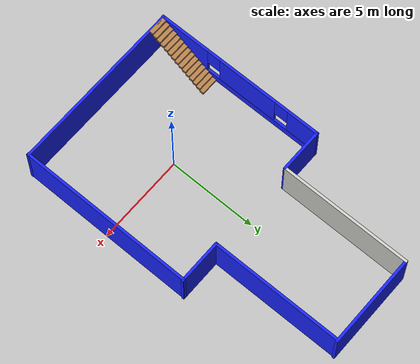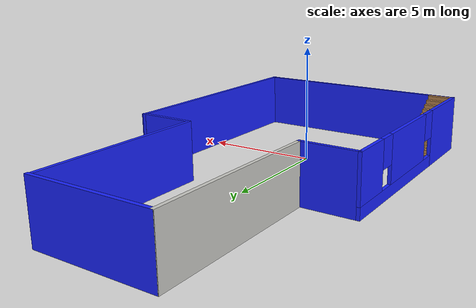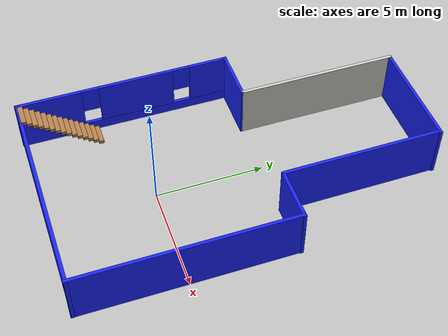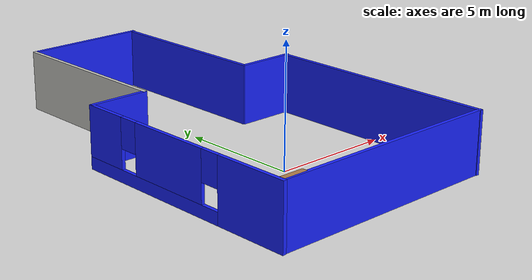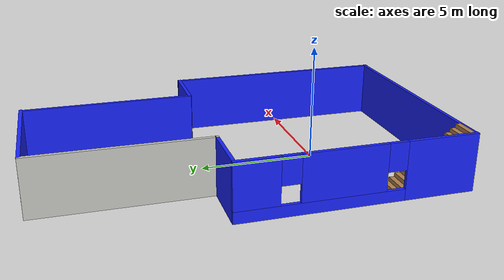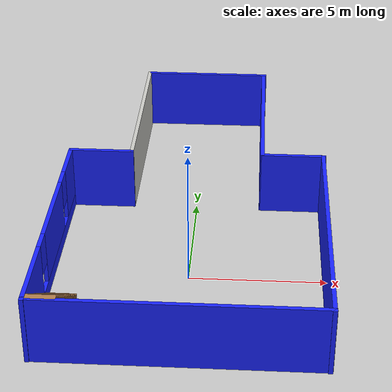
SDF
<?xml version='1.0'?>
<sdf version='1.6'>
  <model name='mySecondHouse'>
    <link name='Stairs_0'>
      <pose frame=''>-1.20208 -6.23735 0 0 -0 0</pose>
      <self_collide>0</self_collide>
      <kinematic>0</kinematic>
      <visual name='Stairs_0_Visual_0'>
        <pose frame=''>-3.16225 4.7318 0.083333 0 -0 0</pose>
        <geometry>
          <box>
            <size>1 0.233333 0.166667</size>
          </box>
        </geometry>
        <material>
          <script>
            <uri>file://media/materials/scripts/gazebo.material</uri>
            <name>Gazebo/Wood</name>
          </script>
          <ambient>1 1 1 1</ambient>
          <diffuse>1 1 1 1</diffuse>
          <specular>0.2 0.2 0.2 1</specular>
          <emissive>0 0 0 1</emissive>
        </material>
        <cast_shadows>1</cast_shadows>
        <transparency>0</transparency>
      </visual>
      <visual name='Stairs_0_Visual_1'>
        <pose frame=''>-3.16225 4.49846 0.25 0 -0 0</pose>
        <geometry>
          <box>
            <size>1 0.233333 0.166667</size>
          </box>
        </geometry>
        <material>
          <script>
            <uri>file://media/materials/scripts/gazebo.material</uri>
            <name>Gazebo/Wood</name>
          </script>
          <ambient>1 1 1 1</ambient>
          <diffuse>1 1 1 1</diffuse>
          <specular>0.2 0.2 0.2 1</specular>
          <emissive>0 0 0 1</emissive>
        </material>
        <cast_shadows>1</cast_shadows>
        <transparency>0</transparency>
      </visual>
      <visual name='Stairs_0_Visual_2'>
        <pose frame=''>-3.16225 4.26513 0.416667 0 -0 0</pose>
        <geometry>
          <box>
            <size>1 0.233333 0.166667</size>
          </box>
        </geometry>
        <material>
          <script>
            <uri>file://media/materials/scripts/gazebo.material</uri>
            <name>Gazebo/Wood</name>
          </script>
          <ambient>1 1 1 1</ambient>
          <diffuse>1 1 1 1</diffuse>
          <specular>0.2 0.2 0.2 1</specular>
          <emissive>0 0 0 1</emissive>
        </material>
        <cast_shadows>1</cast_shadows>
        <transparency>0</transparency>
      </visual>
      <visual name='Stairs_0_Visual_3'>
        <pose frame=''>-3.16225 4.0318 0.583333 0 -0 0</pose>
        <geometry>
          <box>
            <size>1 0.233333 0.166667</size>
          </box>
        </geometry>
        <material>
          <script>
            <uri>file://media/materials/scripts/gazebo.material</uri>
            <name>Gazebo/Wood</name>
          </script>
          <ambient>1 1 1 1</ambient>
          <diffuse>1 1 1 1</diffuse>
          <specular>0.2 0.2 0.2 1</specular>
          <emissive>0 0 0 1</emissive>
        </material>
        <cast_shadows>1</cast_shadows>
        <transparency>0</transparency>
      </visual>
      <visual name='Stairs_0_Visual_4'>
        <pose frame=''>-3.16225 3.79846 0.75 0 -0 0</pose>
        <geometry>
          <box>
            <size>1 0.233333 0.166667</size>
          </box>
        </geometry>
        <material>
          <script>
            <uri>file://media/materials/scripts/gazebo.material</uri>
            <name>Gazebo/Wood</name>
          </script>
          <ambient>1 1 1 1</ambient>
          <diffuse>1 1 1 1</diffuse>
          <specular>0.2 0.2 0.2 1</specular>
          <emissive>0 0 0 1</emissive>
        </material>
        <cast_shadows>1</cast_shadows>
        <transparency>0</transparency>
      </visual>
      <visual name='Stairs_0_Visual_5'>
        <pose frame=''>-3.16225 3.56513 0.916667 0 -0 0</pose>
        <geometry>
          <box>
            <size>1 0.233333 0.166667</size>
          </box>
        </geometry>
        <material>
          <script>
            <uri>file://media/materials/scripts/gazebo.material</uri>
            <name>Gazebo/Wood</name>
          </script>
          <ambient>1 1 1 1</ambient>
          <diffuse>1 1 1 1</diffuse>
          <specular>0.2 0.2 0.2 1</specular>
          <emissive>0 0 0 1</emissive>
        </material>
        <cast_shadows>1</cast_shadows>
        <transparency>0</transparency>
      </visual>
      <visual name='Stairs_0_Visual_6'>
        <pose frame=''>-3.16225 3.3318 1.08333 0 -0 0</pose>
        <geometry>
          <box>
            <size>1 0.233333 0.166667</size>
          </box>
        </geometry>
        <material>
          <script>
            <uri>file://media/materials/scripts/gazebo.material</uri>
            <name>Gazebo/Wood</name>
          </script>
          <ambient>1 1 1 1</ambient>
          <diffuse>1 1 1 1</diffuse>
          <specular>0.2 0.2 0.2 1</specular>
          <emissive>0 0 0 1</emissive>
        </material>
        <cast_shadows>1</cast_shadows>
        <transparency>0</transparency>
      </visual>
      <visual name='Stairs_0_Visual_7'>
        <pose frame=''>-3.16225 3.09846 1.25 0 -0 0</pose>
        <geometry>
          <box>
            <size>1 0.233333 0.166667</size>
          </box>
        </geometry>
        <material>
          <script>
            <uri>file://media/materials/scripts/gazebo.material</uri>
            <name>Gazebo/Wood</name>
          </script>
          <ambient>1 1 1 1</ambient>
          <diffuse>1 1 1 1</diffuse>
          <specular>0.2 0.2 0.2 1</specular>
          <emissive>0 0 0 1</emissive>
        </material>
        <cast_shadows>1</cast_shadows>
        <transparency>0</transparency>
      </visual>
      <visual name='Stairs_0_Visual_8'>
        <pose frame=''>-3.16225 2.86513 1.41667 0 -0 0</pose>
        <geometry>
          <box>
            <size>1 0.233333 0.166667</size>
          </box>
        </geometry>
        <material>
          <script>
            <uri>file://media/materials/scripts/gazebo.material</uri>
            <name>Gazebo/Wood</name>
          </script>
          <ambient>1 1 1 1</ambient>
          <diffuse>1 1 1 1</diffuse>
          <specular>0.2 0.2 0.2 1</specular>
          <emissive>0 0 0 1</emissive>
        </material>
        <cast_shadows>1</cast_shadows>
        <transparency>0</transparency>
      </visual>
      <visual name='Stairs_0_Visual_9'>
        <pose frame=''>-3.16225 2.6318 1.58333 0 -0 0</pose>
        <geometry>
          <box>
            <size>1 0.233333 0.166667</size>
          </box>
        </geometry>
        <material>
          <script>
            <uri>file://media/materials/scripts/gazebo.material</uri>
            <name>Gazebo/Wood</name>
          </script>
          <ambient>1 1 1 1</ambient>
          <diffuse>1 1 1 1</diffuse>
          <specular>0.2 0.2 0.2 1</specular>
          <emissive>0 0 0 1</emissive>
        </material>
        <cast_shadows>1</cast_shadows>
        <transparency>0</transparency>
      </visual>
      <visual name='Stairs_0_Visual_10'>
        <pose frame=''>-3.16225 2.39846 1.75 0 -0 0</pose>
        <geometry>
          <box>
            <size>1 0.233333 0.166667</size>
          </box>
        </geometry>
        <material>
          <script>
            <uri>file://media/materials/scripts/gazebo.material</uri>
            <name>Gazebo/Wood</name>
          </script>
          <ambient>1 1 1 1</ambient>
          <diffuse>1 1 1 1</diffuse>
          <specular>0.2 0.2 0.2 1</specular>
          <emissive>0 0 0 1</emissive>
        </material>
        <cast_shadows>1</cast_shadows>
        <transparency>0</transparency>
      </visual>
      <visual name='Stairs_0_Visual_11'>
        <pose frame=''>-3.16225 2.16513 1.91667 0 -0 0</pose>
        <geometry>
          <box>
            <size>1 0.233333 0.166667</size>
          </box>
        </geometry>
        <material>
          <script>
            <uri>file://media/materials/scripts/gazebo.material</uri>
            <name>Gazebo/Wood</name>
          </script>
          <ambient>1 1 1 1</ambient>
          <diffuse>1 1 1 1</diffuse>
          <specular>0.2 0.2 0.2 1</specular>
          <emissive>0 0 0 1</emissive>
        </material>
        <cast_shadows>1</cast_shadows>
        <transparency>0</transparency>
      </visual>
      <visual name='Stairs_0_Visual_12'>
        <pose frame=''>-3.16225 1.9318 2.08333 0 -0 0</pose>
        <geometry>
          <box>
            <size>1 0.233333 0.166667</size>
          </box>
        </geometry>
        <material>
          <script>
            <uri>file://media/materials/scripts/gazebo.material</uri>
            <name>Gazebo/Wood</name>
          </script>
          <ambient>1 1 1 1</ambient>
          <diffuse>1 1 1 1</diffuse>
          <specular>0.2 0.2 0.2 1</specular>
          <emissive>0 0 0 1</emissive>
        </material>
        <cast_shadows>1</cast_shadows>
        <transparency>0</transparency>
      </visual>
      <visual name='Stairs_0_Visual_13'>
        <pose frame=''>-3.16225 1.69846 2.25 0 -0 0</pose>
        <geometry>
          <box>
            <size>1 0.233333 0.166667</size>
          </box>
        </geometry>
        <material>
          <script>
            <uri>file://media/materials/scripts/gazebo.material</uri>
            <name>Gazebo/Wood</name>
          </script>
          <ambient>1 1 1 1</ambient>
          <diffuse>1 1 1 1</diffuse>
          <specular>0.2 0.2 0.2 1</specular>
          <emissive>0 0 0 1</emissive>
        </material>
        <cast_shadows>1</cast_shadows>
        <transparency>0</transparency>
      </visual>
      <visual name='Stairs_0_Visual_14'>
        <pose frame=''>-3.16225 1.46513 2.41667 0 -0 0</pose>
        <geometry>
          <box>
            <size>1 0.233333 0.166667</size>
          </box>
        </geometry>
        <material>
          <script>
            <uri>file://media/materials/scripts/gazebo.material</uri>
            <name>Gazebo/Wood</name>
          </script>
          <ambient>1 1 1 1</ambient>
          <diffuse>1 1 1 1</diffuse>
          <specular>0.2 0.2 0.2 1</specular>
          <emissive>0 0 0 1</emissive>
        </material>
        <cast_shadows>1</cast_shadows>
        <transparency>0</transparency>
      </visual>
      <collision name='Stairs_0_Collision_14'>
        <laser_retro>0</laser_retro>
        <max_contacts>10</max_contacts>
        <pose frame=''>-3.16225 1.46513 2.41667 0 -0 0</pose>
        <geometry>
          <box>
            <size>1 0.233333 0.166667</size>
          </box>
        </geometry>
        <surface>
          <friction>
            <ode>
              <mu>1</mu>
              <mu2>1</mu2>
              <fdir1>0 0 0</fdir1>
              <slip1>0</slip1>
              <slip2>0</slip2>
            </ode>
            <torsional>
              <coefficient>1</coefficient>
              <patch_radius>0</patch_radius>
              <surface_radius>0</surface_radius>
              <use_patch_radius>1</use_patch_radius>
              <ode>
                <slip>0</slip>
              </ode>
            </torsional>
          </friction>
          <bounce>
            <restitution_coefficient>0</restitution_coefficient>
            <threshold>1e+06</threshold>
          </bounce>
          <contact>
            <collide_without_contact>0</collide_without_contact>
            <collide_without_contact_bitmask>1</collide_without_contact_bitmask>
            <collide_bitmask>1</collide_bitmask>
            <ode>
              <soft_cfm>0</soft_cfm>
              <soft_erp>0.2</soft_erp>
              <kp>1e+13</kp>
              <kd>1</kd>
              <max_vel>0.01</max_vel>
              <min_depth>0</min_depth>
            </ode>
            <bullet>
              <split_impulse>1</split_impulse>
              <split_impulse_penetration_threshold>-0.01</split_impulse_penetration_threshold>
              <soft_cfm>0</soft_cfm>
              <soft_erp>0.2</soft_erp>
              <kp>1e+13</kp>
              <kd>1</kd>
            </bullet>
          </contact>
        </surface>
      </collision>
      <collision name='Stairs_0_Collision_0'>
        <laser_retro>0</laser_retro>
        <max_contacts>10</max_contacts>
        <pose frame=''>-3.16225 4.7318 0.083333 0 -0 0</pose>
        <geometry>
          <box>
            <size>1 0.233333 0.166667</size>
          </box>
        </geometry>
        <surface>
          <friction>
            <ode>
              <mu>1</mu>
              <mu2>1</mu2>
              <fdir1>0 0 0</fdir1>
              <slip1>0</slip1>
              <slip2>0</slip2>
            </ode>
            <torsional>
              <coefficient>1</coefficient>
              <patch_radius>0</patch_radius>
              <surface_radius>0</surface_radius>
              <use_patch_radius>1</use_patch_radius>
              <ode>
                <slip>0</slip>
              </ode>
            </torsional>
          </friction>
          <bounce>
            <restitution_coefficient>0</restitution_coefficient>
            <threshold>1e+06</threshold>
          </bounce>
          <contact>
            <collide_without_contact>0</collide_without_contact>
            <collide_without_contact_bitmask>1</collide_without_contact_bitmask>
            <collide_bitmask>1</collide_bitmask>
            <ode>
              <soft_cfm>0</soft_cfm>
              <soft_erp>0.2</soft_erp>
              <kp>1e+13</kp>
              <kd>1</kd>
              <max_vel>0.01</max_vel>
              <min_depth>0</min_depth>
            </ode>
            <bullet>
              <split_impulse>1</split_impulse>
              <split_impulse_penetration_threshold>-0.01</split_impulse_penetration_threshold>
              <soft_cfm>0</soft_cfm>
              <soft_erp>0.2</soft_erp>
              <kp>1e+13</kp>
              <kd>1</kd>
            </bullet>
          </contact>
        </surface>
      </collision>
      <collision name='Stairs_0_Collision_1'>
        <laser_retro>0</laser_retro>
        <max_contacts>10</max_contacts>
        <pose frame=''>-3.16225 4.49846 0.25 0 -0 0</pose>
        <geometry>
          <box>
            <size>1 0.233333 0.166667</size>
          </box>
        </geometry>
        <surface>
          <friction>
            <ode>
              <mu>1</mu>
              <mu2>1</mu2>
              <fdir1>0 0 0</fdir1>
              <slip1>0</slip1>
              <slip2>0</slip2>
            </ode>
            <torsional>
              <coefficient>1</coefficient>
              <patch_radius>0</patch_radius>
              <surface_radius>0</surface_radius>
              <use_patch_radius>1</use_patch_radius>
              <ode>
                <slip>0</slip>
              </ode>
            </torsional>
          </friction>
          <bounce>
            <restitution_coefficient>0</restitution_coefficient>
            <threshold>1e+06</threshold>
          </bounce>
          <contact>
            <collide_without_contact>0</collide_without_contact>
            <collide_without_contact_bitmask>1</collide_without_contact_bitmask>
            <collide_bitmask>1</collide_bitmask>
            <ode>
              <soft_cfm>0</soft_cfm>
              <soft_erp>0.2</soft_erp>
              <kp>1e+13</kp>
              <kd>1</kd>
              <max_vel>0.01</max_vel>
              <min_depth>0</min_depth>
            </ode>
            <bullet>
              <split_impulse>1</split_impulse>
              <split_impulse_penetration_threshold>-0.01</split_impulse_penetration_threshold>
              <soft_cfm>0</soft_cfm>
              <soft_erp>0.2</soft_erp>
              <kp>1e+13</kp>
              <kd>1</kd>
            </bullet>
          </contact>
        </surface>
      </collision>
      <collision name='Stairs_0_Collision_2'>
        <laser_retro>0</laser_retro>
        <max_contacts>10</max_contacts>
        <pose frame=''>-3.16225 4.26513 0.416667 0 -0 0</pose>
        <geometry>
          <box>
            <size>1 0.233333 0.166667</size>
          </box>
        </geometry>
        <surface>
          <friction>
            <ode>
              <mu>1</mu>
              <mu2>1</mu2>
              <fdir1>0 0 0</fdir1>
              <slip1>0</slip1>
              <slip2>0</slip2>
            </ode>
            <torsional>
              <coefficient>1</coefficient>
              <patch_radius>0</patch_radius>
              <surface_radius>0</surface_radius>
              <use_patch_radius>1</use_patch_radius>
              <ode>
                <slip>0</slip>
              </ode>
            </torsional>
          </friction>
          <bounce>
            <restitution_coefficient>0</restitution_coefficient>
            <threshold>1e+06</threshold>
          </bounce>
          <contact>
            <collide_without_contact>0</collide_without_contact>
            <collide_without_contact_bitmask>1</collide_without_contact_bitmask>
            <collide_bitmask>1</collide_bitmask>
            <ode>
              <soft_cfm>0</soft_cfm>
              <soft_erp>0.2</soft_erp>
              <kp>1e+13</kp>
              <kd>1</kd>
              <max_vel>0.01</max_vel>
              <min_depth>0</min_depth>
            </ode>
            <bullet>
              <split_impulse>1</split_impulse>
              <split_impulse_penetration_threshold>-0.01</split_impulse_penetration_threshold>
              <soft_cfm>0</soft_cfm>
              <soft_erp>0.2</soft_erp>
              <kp>1e+13</kp>
              <kd>1</kd>
            </bullet>
          </contact>
        </surface>
      </collision>
      <collision name='Stairs_0_Collision_3'>
        <laser_retro>0</laser_retro>
        <max_contacts>10</max_contacts>
        <pose frame=''>-3.16225 4.0318 0.583333 0 -0 0</pose>
        <geometry>
          <box>
            <size>1 0.233333 0.166667</size>
          </box>
        </geometry>
        <surface>
          <friction>
            <ode>
              <mu>1</mu>
              <mu2>1</mu2>
              <fdir1>0 0 0</fdir1>
              <slip1>0</slip1>
              <slip2>0</slip2>
            </ode>
            <torsional>
              <coefficient>1</coefficient>
              <patch_radius>0</patch_radius>
              <surface_radius>0</surface_radius>
              <use_patch_radius>1</use_patch_radius>
              <ode>
                <slip>0</slip>
              </ode>
            </torsional>
          </friction>
          <bounce>
            <restitution_coefficient>0</restitution_coefficient>
            <threshold>1e+06</threshold>
          </bounce>
          <contact>
            <collide_without_contact>0</collide_without_contact>
            <collide_without_contact_bitmask>1</collide_without_contact_bitmask>
            <collide_bitmask>1</collide_bitmask>
            <ode>
              <soft_cfm>0</soft_cfm>
              <soft_erp>0.2</soft_erp>
              <kp>1e+13</kp>
              <kd>1</kd>
              <max_vel>0.01</max_vel>
              <min_depth>0</min_depth>
            </ode>
            <bullet>
              <split_impulse>1</split_impulse>
              <split_impulse_penetration_threshold>-0.01</split_impulse_penetration_threshold>
              <soft_cfm>0</soft_cfm>
              <soft_erp>0.2</soft_erp>
              <kp>1e+13</kp>
              <kd>1</kd>
            </bullet>
          </contact>
        </surface>
      </collision>
      <collision name='Stairs_0_Collision_5'>
        <laser_retro>0</laser_retro>
        <max_contacts>10</max_contacts>
        <pose frame=''>-3.16225 3.56513 0.916667 0 -0 0</pose>
        <geometry>
          <box>
            <size>1 0.233333 0.166667</size>
          </box>
        </geometry>
        <surface>
          <friction>
            <ode>
              <mu>1</mu>
              <mu2>1</mu2>
              <fdir1>0 0 0</fdir1>
              <slip1>0</slip1>
              <slip2>0</slip2>
            </ode>
            <torsional>
              <coefficient>1</coefficient>
              <patch_radius>0</patch_radius>
              <surface_radius>0</surface_radius>
              <use_patch_radius>1</use_patch_radius>
              <ode>
                <slip>0</slip>
              </ode>
            </torsional>
          </friction>
          <bounce>
            <restitution_coefficient>0</restitution_coefficient>
            <threshold>1e+06</threshold>
          </bounce>
          <contact>
            <collide_without_contact>0</collide_without_contact>
            <collide_without_contact_bitmask>1</collide_without_contact_bitmask>
            <collide_bitmask>1</collide_bitmask>
            <ode>
              <soft_cfm>0</soft_cfm>
              <soft_erp>0.2</soft_erp>
              <kp>1e+13</kp>
              <kd>1</kd>
              <max_vel>0.01</max_vel>
              <min_depth>0</min_depth>
            </ode>
            <bullet>
              <split_impulse>1</split_impulse>
              <split_impulse_penetration_threshold>-0.01</split_impulse_penetration_threshold>
              <soft_cfm>0</soft_cfm>
              <soft_erp>0.2</soft_erp>
              <kp>1e+13</kp>
              <kd>1</kd>
            </bullet>
          </contact>
        </surface>
      </collision>
      <collision name='Stairs_0_Collision_6'>
        <laser_retro>0</laser_retro>
        <max_contacts>10</max_contacts>
        <pose frame=''>-3.16225 3.3318 1.08333 0 -0 0</pose>
        <geometry>
          <box>
            <size>1 0.233333 0.166667</size>
          </box>
        </geometry>
        <surface>
          <friction>
            <ode>
              <mu>1</mu>
              <mu2>1</mu2>
              <fdir1>0 0 0</fdir1>
              <slip1>0</slip1>
              <slip2>0</slip2>
            </ode>
            <torsional>
              <coefficient>1</coefficient>
              <patch_radius>0</patch_radius>
              <surface_radius>0</surface_radius>
              <use_patch_radius>1</use_patch_radius>
              <ode>
                <slip>0</slip>
              </ode>
            </torsional>
          </friction>
          <bounce>
            <restitution_coefficient>0</restitution_coefficient>
            <threshold>1e+06</threshold>
          </bounce>
          <contact>
            <collide_without_contact>0</collide_without_contact>
            <collide_without_contact_bitmask>1</collide_without_contact_bitmask>
            <collide_bitmask>1</collide_bitmask>
            <ode>
              <soft_cfm>0</soft_cfm>
              <soft_erp>0.2</soft_erp>
              <kp>1e+13</kp>
              <kd>1</kd>
              <max_vel>0.01</max_vel>
              <min_depth>0</min_depth>
            </ode>
            <bullet>
              <split_impulse>1</split_impulse>
              <split_impulse_penetration_threshold>-0.01</split_impulse_penetration_threshold>
              <soft_cfm>0</soft_cfm>
              <soft_erp>0.2</soft_erp>
              <kp>1e+13</kp>
              <kd>1</kd>
            </bullet>
          </contact>
        </surface>
      </collision>
      <collision name='Stairs_0_Collision_4'>
        <laser_retro>0</laser_retro>
        <max_contacts>10</max_contacts>
        <pose frame=''>-3.16225 3.79846 0.75 0 -0 0</pose>
        <geometry>
          <box>
            <size>1 0.233333 0.166667</size>
          </box>
        </geometry>
        <surface>
          <friction>
            <ode>
              <mu>1</mu>
              <mu2>1</mu2>
              <fdir1>0 0 0</fdir1>
              <slip1>0</slip1>
              <slip2>0</slip2>
            </ode>
            <torsional>
              <coefficient>1</coefficient>
              <patch_radius>0</patch_radius>
              <surface_radius>0</surface_radius>
              <use_patch_radius>1</use_patch_radius>
              <ode>
                <slip>0</slip>
              </ode>
            </torsional>
          </friction>
          <bounce>
            <restitution_coefficient>0</restitution_coefficient>
            <threshold>1e+06</threshold>
          </bounce>
          <contact>
            <collide_without_contact>0</collide_without_contact>
            <collide_without_contact_bitmask>1</collide_without_contact_bitmask>
            <collide_bitmask>1</collide_bitmask>
            <ode>
              <soft_cfm>0</soft_cfm>
              <soft_erp>0.2</soft_erp>
              <kp>1e+13</kp>
              <kd>1</kd>
              <max_vel>0.01</max_vel>
              <min_depth>0</min_depth>
            </ode>
            <bullet>
              <split_impulse>1</split_impulse>
              <split_impulse_penetration_threshold>-0.01</split_impulse_penetration_threshold>
              <soft_cfm>0</soft_cfm>
              <soft_erp>0.2</soft_erp>
              <kp>1e+13</kp>
              <kd>1</kd>
            </bullet>
          </contact>
        </surface>
      </collision>
      <collision name='Stairs_0_Collision_9'>
        <laser_retro>0</laser_retro>
        <max_contacts>10</max_contacts>
        <pose frame=''>-3.16225 2.6318 1.58333 0 -0 0</pose>
        <geometry>
          <box>
            <size>1 0.233333 0.166667</size>
          </box>
        </geometry>
        <surface>
          <friction>
            <ode>
              <mu>1</mu>
              <mu2>1</mu2>
              <fdir1>0 0 0</fdir1>
              <slip1>0</slip1>
              <slip2>0</slip2>
            </ode>
            <torsional>
              <coefficient>1</coefficient>
              <patch_radius>0</patch_radius>
              <surface_radius>0</surface_radius>
              <use_patch_radius>1</use_patch_radius>
              <ode>
                <slip>0</slip>
              </ode>
            </torsional>
          </friction>
          <bounce>
            <restitution_coefficient>0</restitution_coefficient>
            <threshold>1e+06</threshold>
          </bounce>
          <contact>
            <collide_without_contact>0</collide_without_contact>
            <collide_without_contact_bitmask>1</collide_without_contact_bitmask>
            <collide_bitmask>1</collide_bitmask>
            <ode>
              <soft_cfm>0</soft_cfm>
              <soft_erp>0.2</soft_erp>
              <kp>1e+13</kp>
              <kd>1</kd>
              <max_vel>0.01</max_vel>
              <min_depth>0</min_depth>
            </ode>
            <bullet>
              <split_impulse>1</split_impulse>
              <split_impulse_penetration_threshold>-0.01</split_impulse_penetration_threshold>
              <soft_cfm>0</soft_cfm>
              <soft_erp>0.2</soft_erp>
              <kp>1e+13</kp>
              <kd>1</kd>
            </bullet>
          </contact>
        </surface>
      </collision>
      <collision name='Stairs_0_Collision_7'>
        <laser_retro>0</laser_retro>
        <max_contacts>10</max_contacts>
        <pose frame=''>-3.16225 3.09846 1.25 0 -0 0</pose>
        <geometry>
          <box>
            <size>1 0.233333 0.166667</size>
          </box>
        </geometry>
        <surface>
          <friction>
            <ode>
              <mu>1</mu>
              <mu2>1</mu2>
              <fdir1>0 0 0</fdir1>
              <slip1>0</slip1>
              <slip2>0</slip2>
            </ode>
            <torsional>
              <coefficient>1</coefficient>
              <patch_radius>0</patch_radius>
              <surface_radius>0</surface_radius>
              <use_patch_radius>1</use_patch_radius>
              <ode>
                <slip>0</slip>
              </ode>
            </torsional>
          </friction>
          <bounce>
            <restitution_coefficient>0</restitution_coefficient>
            <threshold>1e+06</threshold>
          </bounce>
          <contact>
            <collide_without_contact>0</collide_without_contact>
            <collide_without_contact_bitmask>1</collide_without_contact_bitmask>
            <collide_bitmask>1</collide_bitmask>
            <ode>
              <soft_cfm>0</soft_cfm>
              <soft_erp>0.2</soft_erp>
              <kp>1e+13</kp>
              <kd>1</kd>
              <max_vel>0.01</max_vel>
              <min_depth>0</min_depth>
            </ode>
            <bullet>
              <split_impulse>1</split_impulse>
              <split_impulse_penetration_threshold>-0.01</split_impulse_penetration_threshold>
              <soft_cfm>0</soft_cfm>
              <soft_erp>0.2</soft_erp>
              <kp>1e+13</kp>
              <kd>1</kd>
            </bullet>
          </contact>
        </surface>
      </collision>
      <collision name='Stairs_0_Collision_8'>
        <laser_retro>0</laser_retro>
        <max_contacts>10</max_contacts>
        <pose frame=''>-3.16225 2.86513 1.41667 0 -0 0</pose>
        <geometry>
          <box>
            <size>1 0.233333 0.166667</size>
          </box>
        </geometry>
        <surface>
          <friction>
            <ode>
              <mu>1</mu>
              <mu2>1</mu2>
              <fdir1>0 0 0</fdir1>
              <slip1>0</slip1>
              <slip2>0</slip2>
            </ode>
            <torsional>
              <coefficient>1</coefficient>
              <patch_radius>0</patch_radius>
              <surface_radius>0</surface_radius>
              <use_patch_radius>1</use_patch_radius>
              <ode>
                <slip>0</slip>
              </ode>
            </torsional>
          </friction>
          <bounce>
            <restitution_coefficient>0</restitution_coefficient>
            <threshold>1e+06</threshold>
          </bounce>
          <contact>
            <collide_without_contact>0</collide_without_contact>
            <collide_without_contact_bitmask>1</collide_without_contact_bitmask>
            <collide_bitmask>1</collide_bitmask>
            <ode>
              <soft_cfm>0</soft_cfm>
              <soft_erp>0.2</soft_erp>
              <kp>1e+13</kp>
              <kd>1</kd>
              <max_vel>0.01</max_vel>
              <min_depth>0</min_depth>
            </ode>
            <bullet>
              <split_impulse>1</split_impulse>
              <split_impulse_penetration_threshold>-0.01</split_impulse_penetration_threshold>
              <soft_cfm>0</soft_cfm>
              <soft_erp>0.2</soft_erp>
              <kp>1e+13</kp>
              <kd>1</kd>
            </bullet>
          </contact>
        </surface>
      </collision>
      <collision name='Stairs_0_Collision_10'>
        <laser_retro>0</laser_retro>
        <max_contacts>10</max_contacts>
        <pose frame=''>-3.16225 2.39846 1.75 0 -0 0</pose>
        <geometry>
          <box>
            <size>1 0.233333 0.166667</size>
          </box>
        </geometry>
        <surface>
          <friction>
            <ode>
              <mu>1</mu>
              <mu2>1</mu2>
              <fdir1>0 0 0</fdir1>
              <slip1>0</slip1>
              <slip2>0</slip2>
            </ode>
            <torsional>
              <coefficient>1</coefficient>
              <patch_radius>0</patch_radius>
              <surface_radius>0</surface_radius>
              <use_patch_radius>1</use_patch_radius>
              <ode>
                <slip>0</slip>
              </ode>
            </torsional>
          </friction>
          <bounce>
            <restitution_coefficient>0</restitution_coefficient>
            <threshold>1e+06</threshold>
          </bounce>
          <contact>
            <collide_without_contact>0</collide_without_contact>
            <collide_without_contact_bitmask>1</collide_without_contact_bitmask>
            <collide_bitmask>1</collide_bitmask>
            <ode>
              <soft_cfm>0</soft_cfm>
              <soft_erp>0.2</soft_erp>
              <kp>1e+13</kp>
              <kd>1</kd>
              <max_vel>0.01</max_vel>
              <min_depth>0</min_depth>
            </ode>
            <bullet>
              <split_impulse>1</split_impulse>
              <split_impulse_penetration_threshold>-0.01</split_impulse_penetration_threshold>
              <soft_cfm>0</soft_cfm>
              <soft_erp>0.2</soft_erp>
              <kp>1e+13</kp>
              <kd>1</kd>
            </bullet>
          </contact>
        </surface>
      </collision>
      <collision name='Stairs_0_Collision_11'>
        <laser_retro>0</laser_retro>
        <max_contacts>10</max_contacts>
        <pose frame=''>-3.16225 2.16513 1.91667 0 -0 0</pose>
        <geometry>
          <box>
            <size>1 0.233333 0.166667</size>
          </box>
        </geometry>
        <surface>
          <friction>
            <ode>
              <mu>1</mu>
              <mu2>1</mu2>
              <fdir1>0 0 0</fdir1>
              <slip1>0</slip1>
              <slip2>0</slip2>
            </ode>
            <torsional>
              <coefficient>1</coefficient>
              <patch_radius>0</patch_radius>
              <surface_radius>0</surface_radius>
              <use_patch_radius>1</use_patch_radius>
              <ode>
                <slip>0</slip>
              </ode>
            </torsional>
          </friction>
          <bounce>
            <restitution_coefficient>0</restitution_coefficient>
            <threshold>1e+06</threshold>
          </bounce>
          <contact>
            <collide_without_contact>0</collide_without_contact>
            <collide_without_contact_bitmask>1</collide_without_contact_bitmask>
            <collide_bitmask>1</collide_bitmask>
            <ode>
              <soft_cfm>0</soft_cfm>
              <soft_erp>0.2</soft_erp>
              <kp>1e+13</kp>
              <kd>1</kd>
              <max_vel>0.01</max_vel>
              <min_depth>0</min_depth>
            </ode>
            <bullet>
              <split_impulse>1</split_impulse>
              <split_impulse_penetration_threshold>-0.01</split_impulse_penetration_threshold>
              <soft_cfm>0</soft_cfm>
              <soft_erp>0.2</soft_erp>
              <kp>1e+13</kp>
              <kd>1</kd>
            </bullet>
          </contact>
        </surface>
      </collision>
      <collision name='Stairs_0_Collision_12'>
        <laser_retro>0</laser_retro>
        <max_contacts>10</max_contacts>
        <pose frame=''>-3.16225 1.9318 2.08333 0 -0 0</pose>
        <geometry>
          <box>
            <size>1 0.233333 0.166667</size>
          </box>
        </geometry>
        <surface>
          <friction>
            <ode>
              <mu>1</mu>
              <mu2>1</mu2>
              <fdir1>0 0 0</fdir1>
              <slip1>0</slip1>
              <slip2>0</slip2>
            </ode>
            <torsional>
              <coefficient>1</coefficient>
              <patch_radius>0</patch_radius>
              <surface_radius>0</surface_radius>
              <use_patch_radius>1</use_patch_radius>
              <ode>
                <slip>0</slip>
              </ode>
            </torsional>
          </friction>
          <bounce>
            <restitution_coefficient>0</restitution_coefficient>
            <threshold>1e+06</threshold>
          </bounce>
          <contact>
            <collide_without_contact>0</collide_without_contact>
            <collide_without_contact_bitmask>1</collide_without_contact_bitmask>
            <collide_bitmask>1</collide_bitmask>
            <ode>
              <soft_cfm>0</soft_cfm>
              <soft_erp>0.2</soft_erp>
              <kp>1e+13</kp>
              <kd>1</kd>
              <max_vel>0.01</max_vel>
              <min_depth>0</min_depth>
            </ode>
            <bullet>
              <split_impulse>1</split_impulse>
              <split_impulse_penetration_threshold>-0.01</split_impulse_penetration_threshold>
              <soft_cfm>0</soft_cfm>
              <soft_erp>0.2</soft_erp>
              <kp>1e+13</kp>
              <kd>1</kd>
            </bullet>
          </contact>
        </surface>
      </collision>
      <collision name='Stairs_0_Collision_13'>
        <laser_retro>0</laser_retro>
        <max_contacts>10</max_contacts>
        <pose frame=''>-3.16225 1.69846 2.25 0 -0 0</pose>
        <geometry>
          <box>
            <size>1 0.233333 0.166667</size>
          </box>
        </geometry>
        <surface>
          <friction>
            <ode>
              <mu>1</mu>
              <mu2>1</mu2>
              <fdir1>0 0 0</fdir1>
              <slip1>0</slip1>
              <slip2>0</slip2>
            </ode>
            <torsional>
              <coefficient>1</coefficient>
              <patch_radius>0</patch_radius>
              <surface_radius>0</surface_radius>
              <use_patch_radius>1</use_patch_radius>
              <ode>
                <slip>0</slip>
              </ode>
            </torsional>
          </friction>
          <bounce>
            <restitution_coefficient>0</restitution_coefficient>
            <threshold>1e+06</threshold>
          </bounce>
          <contact>
            <collide_without_contact>0</collide_without_contact>
            <collide_without_contact_bitmask>1</collide_without_contact_bitmask>
            <collide_bitmask>1</collide_bitmask>
            <ode>
              <soft_cfm>0</soft_cfm>
              <soft_erp>0.2</soft_erp>
              <kp>1e+13</kp>
              <kd>1</kd>
              <max_vel>0.01</max_vel>
              <min_depth>0</min_depth>
            </ode>
            <bullet>
              <split_impulse>1</split_impulse>
              <split_impulse_penetration_threshold>-0.01</split_impulse_penetration_threshold>
              <soft_cfm>0</soft_cfm>
              <soft_erp>0.2</soft_erp>
              <kp>1e+13</kp>
              <kd>1</kd>
            </bullet>
          </contact>
        </surface>
      </collision>
    </link>
    <link name='Wall_26'>
      <pose frame=''>-3.71974 4.925 0 0 -0 0</pose>
      <self_collide>0</self_collide>
      <kinematic>0</kinematic>
      <visual name='Wall_26_Visual'>
        <pose frame=''>0 0 1.25 0 -0 0</pose>
        <geometry>
          <box>
            <size>2.5 0.15 2.5</size>
          </box>
        </geometry>
        <material>
          <script>
            <uri>file://media/materials/scripts/gazebo.material</uri>
            <name>Gazebo/Grey</name>
          </script>
          <ambient>0.0980392 0.141176 1 1</ambient>
          <diffuse>0.7 0.7 0.7 1</diffuse>
          <specular>0.01 0.01 0.01 1</specular>
          <emissive>0 0 0 1</emissive>
        </material>
        <cast_shadows>1</cast_shadows>
        <transparency>0</transparency>
      </visual>
      <collision name='Wall_26_Collision'>
        <laser_retro>0</laser_retro>
        <max_contacts>10</max_contacts>
        <pose frame=''>0 0 1.25 0 -0 0</pose>
        <geometry>
          <box>
            <size>2.5 0.15 2.5</size>
          </box>
        </geometry>
        <surface>
          <friction>
            <ode>
              <mu>1</mu>
              <mu2>1</mu2>
              <fdir1>0 0 0</fdir1>
              <slip1>0</slip1>
              <slip2>0</slip2>
            </ode>
            <torsional>
              <coefficient>1</coefficient>
              <patch_radius>0</patch_radius>
              <surface_radius>0</surface_radius>
              <use_patch_radius>1</use_patch_radius>
              <ode>
                <slip>0</slip>
              </ode>
            </torsional>
          </friction>
          <bounce>
            <restitution_coefficient>0</restitution_coefficient>
            <threshold>1e+06</threshold>
          </bounce>
          <contact>
            <collide_without_contact>0</collide_without_contact>
            <collide_without_contact_bitmask>1</collide_without_contact_bitmask>
            <collide_bitmask>1</collide_bitmask>
            <ode>
              <soft_cfm>0</soft_cfm>
              <soft_erp>0.2</soft_erp>
              <kp>1e+13</kp>
              <kd>1</kd>
              <max_vel>0.01</max_vel>
              <min_depth>0</min_depth>
            </ode>
            <bullet>
              <split_impulse>1</split_impulse>
              <split_impulse_penetration_threshold>-0.01</split_impulse_penetration_threshold>
              <soft_cfm>0</soft_cfm>
              <soft_erp>0.2</soft_erp>
              <kp>1e+13</kp>
              <kd>1</kd>
            </bullet>
          </contact>
        </surface>
      </collision>
    </link>
    <link name='Wall_27'>
      <pose frame=''>-2.54213 8.59143 0 0 0 -1.57151</pose>
      <self_collide>0</self_collide>
      <kinematic>0</kinematic>
      <inertial>
        <inertia>
          <ixx>nan</ixx>
          <ixy>0</ixy>
          <ixz>0</ixz>
          <iyy>nan</iyy>
          <iyz>0</iyz>
          <izz>nan</izz>
        </inertia>
        <mass>0</mass>
        <pose frame=''>0 0 0 0 -0 0</pose>
      </inertial>
      <visual name='Wall_27_Visual'>
        <pose frame=''>0 0 1.25 0 -0 0</pose>
        <geometry>
          <box>
            <size>7.48003 0.15 2.5</size>
          </box>
        </geometry>
        <material>
          <script>
            <uri>file://media/materials/scripts/gazebo.material</uri>
            <name>Gazebo/CeilingTiled</name>
          </script>
          <ambient>0.0980392 0.141176 1 1</ambient>
          <diffuse>1 1 1 1</diffuse>
          <specular>0 0 0 1</specular>
          <emissive>0 0 0 1</emissive>
        </material>
        <cast_shadows>1</cast_shadows>
        <transparency>0</transparency>
      </visual>
      <collision name='Wall_27_Collision'>
        <laser_retro>0</laser_retro>
        <max_contacts>10</max_contacts>
        <pose frame=''>0 0 1.25 0 -0 0</pose>
        <geometry>
          <box>
            <size>7.48003 0.15 2.5</size>
          </box>
        </geometry>
        <surface>
          <friction>
            <ode>
              <mu>1</mu>
              <mu2>1</mu2>
              <fdir1>0 0 0</fdir1>
              <slip1>0</slip1>
              <slip2>0</slip2>
            </ode>
            <torsional>
              <coefficient>1</coefficient>
              <patch_radius>0</patch_radius>
              <surface_radius>0</surface_radius>
              <use_patch_radius>1</use_patch_radius>
              <ode>
                <slip>0</slip>
              </ode>
            </torsional>
          </friction>
          <bounce>
            <restitution_coefficient>0</restitution_coefficient>
            <threshold>1e+06</threshold>
          </bounce>
          <contact>
            <collide_without_contact>0</collide_without_contact>
            <collide_without_contact_bitmask>1</collide_without_contact_bitmask>
            <collide_bitmask>1</collide_bitmask>
            <ode>
              <soft_cfm>0</soft_cfm>
              <soft_erp>0.2</soft_erp>
              <kp>1e+13</kp>
              <kd>1</kd>
              <max_vel>0.01</max_vel>
              <min_depth>0</min_depth>
            </ode>
            <bullet>
              <split_impulse>1</split_impulse>
              <split_impulse_penetration_threshold>-0.01</split_impulse_penetration_threshold>
              <soft_cfm>0</soft_cfm>
              <soft_erp>0.2</soft_erp>
              <kp>1e+13</kp>
              <kd>1</kd>
            </bullet>
          </contact>
        </surface>
      </collision>
    </link>
    <link name='Wall_28'>
      <pose frame=''>0.035567 12.2589 0 0 -0 0</pose>
      <self_collide>0</self_collide>
      <kinematic>0</kinematic>
      <visual name='Wall_28_Visual'>
        <pose frame=''>0 0 1.25 0 -0 0</pose>
        <geometry>
          <box>
            <size>5.25 0.15 2.5</size>
          </box>
        </geometry>
        <material>
          <script>
            <uri>file://media/materials/scripts/gazebo.material</uri>
            <name>Gazebo/Grey</name>
          </script>
          <ambient>0.0980392 0.141176 1 1</ambient>
          <diffuse>0.7 0.7 0.7 1</diffuse>
          <specular>0.01 0.01 0.01 1</specular>
          <emissive>0 0 0 1</emissive>
        </material>
        <cast_shadows>1</cast_shadows>
        <transparency>0</transparency>
      </visual>
      <collision name='Wall_28_Collision'>
        <laser_retro>0</laser_retro>
        <max_contacts>10</max_contacts>
        <pose frame=''>0 0 1.25 0 -0 0</pose>
        <geometry>
          <box>
            <size>5.25 0.15 2.5</size>
          </box>
        </geometry>
        <surface>
          <friction>
            <ode>
              <mu>1</mu>
              <mu2>1</mu2>
              <fdir1>0 0 0</fdir1>
              <slip1>0</slip1>
              <slip2>0</slip2>
            </ode>
            <torsional>
              <coefficient>1</coefficient>
              <patch_radius>0</patch_radius>
              <surface_radius>0</surface_radius>
              <use_patch_radius>1</use_patch_radius>
              <ode>
                <slip>0</slip>
              </ode>
            </torsional>
          </friction>
          <bounce>
            <restitution_coefficient>0</restitution_coefficient>
            <threshold>1e+06</threshold>
          </bounce>
          <contact>
            <collide_without_contact>0</collide_without_contact>
            <collide_without_contact_bitmask>1</collide_without_contact_bitmask>
            <collide_bitmask>1</collide_bitmask>
            <ode>
              <soft_cfm>0</soft_cfm>
              <soft_erp>0.2</soft_erp>
              <kp>1e+13</kp>
              <kd>1</kd>
              <max_vel>0.01</max_vel>
              <min_depth>0</min_depth>
            </ode>
            <bullet>
              <split_impulse>1</split_impulse>
              <split_impulse_penetration_threshold>-0.01</split_impulse_penetration_threshold>
              <soft_cfm>0</soft_cfm>
              <soft_erp>0.2</soft_erp>
              <kp>1e+13</kp>
              <kd>1</kd>
            </bullet>
          </contact>
        </surface>
      </collision>
    </link>
    <link name='Wall_29'>
      <pose frame=''>2.54684 8.53962 0 0 -0 1.57417</pose>
      <self_collide>0</self_collide>
      <kinematic>0</kinematic>
      <inertial>
        <inertia>
          <ixx>nan</ixx>
          <ixy>0</ixy>
          <ixz>0</ixz>
          <iyy>nan</iyy>
          <iyz>0</iyz>
          <izz>nan</izz>
        </inertia>
        <mass>0</mass>
        <pose frame=''>0 0 0 0 -0 0</pose>
      </inertial>
      <visual name='Wall_29_Visual'>
        <pose frame=''>0 0 1.25 0 -0 0</pose>
        <geometry>
          <box>
            <size>7.33027 0.15 2.5</size>
          </box>
        </geometry>
        <material>
          <script>
            <uri>file://media/materials/scripts/gazebo.material</uri>
            <name>Gazebo/Grey</name>
          </script>
          <ambient>0.0980392 0.141176 1 1</ambient>
          <diffuse>0.7 0.7 0.7 1</diffuse>
          <specular>0.01 0.01 0.01 1</specular>
          <emissive>0 0 0 1</emissive>
        </material>
        <cast_shadows>1</cast_shadows>
        <transparency>0</transparency>
      </visual>
      <collision name='Wall_29_Collision'>
        <laser_retro>0</laser_retro>
        <max_contacts>10</max_contacts>
        <pose frame=''>0 0 1.25 0 -0 0</pose>
        <geometry>
          <box>
            <size>7.33027 0.15 2.5</size>
          </box>
        </geometry>
        <surface>
          <friction>
            <ode>
              <mu>1</mu>
              <mu2>1</mu2>
              <fdir1>0 0 0</fdir1>
              <slip1>0</slip1>
              <slip2>0</slip2>
            </ode>
            <torsional>
              <coefficient>1</coefficient>
              <patch_radius>0</patch_radius>
              <surface_radius>0</surface_radius>
              <use_patch_radius>1</use_patch_radius>
              <ode>
                <slip>0</slip>
              </ode>
            </torsional>
          </friction>
          <bounce>
            <restitution_coefficient>0</restitution_coefficient>
            <threshold>1e+06</threshold>
          </bounce>
          <contact>
            <collide_without_contact>0</collide_without_contact>
            <collide_without_contact_bitmask>1</collide_without_contact_bitmask>
            <collide_bitmask>1</collide_bitmask>
            <ode>
              <soft_cfm>0</soft_cfm>
              <soft_erp>0.2</soft_erp>
              <kp>1e+13</kp>
              <kd>1</kd>
              <max_vel>0.01</max_vel>
              <min_depth>0</min_depth>
            </ode>
            <bullet>
              <split_impulse>1</split_impulse>
              <split_impulse_penetration_threshold>-0.01</split_impulse_penetration_threshold>
              <soft_cfm>0</soft_cfm>
              <soft_erp>0.2</soft_erp>
              <kp>1e+13</kp>
              <kd>1</kd>
            </bullet>
          </contact>
        </surface>
      </collision>
    </link>
    <link name='Wall_30'>
      <pose frame=''>3.77003 4.925 0 0 -0 0</pose>
      <self_collide>0</self_collide>
      <kinematic>0</kinematic>
      <visual name='Wall_30_Visual'>
        <pose frame=''>0 0 1.25 0 -0 0</pose>
        <geometry>
          <box>
            <size>2.5 0.15 2.5</size>
          </box>
        </geometry>
        <material>
          <script>
            <uri>file://media/materials/scripts/gazebo.material</uri>
            <name>Gazebo/Grey</name>
          </script>
          <ambient>0.0980392 0.141176 1 1</ambient>
          <diffuse>0.7 0.7 0.7 1</diffuse>
          <specular>0.01 0.01 0.01 1</specular>
          <emissive>0 0 0 1</emissive>
        </material>
        <cast_shadows>1</cast_shadows>
        <transparency>0</transparency>
      </visual>
      <collision name='Wall_30_Collision'>
        <laser_retro>0</laser_retro>
        <max_contacts>10</max_contacts>
        <pose frame=''>0 0 1.25 0 -0 0</pose>
        <geometry>
          <box>
            <size>2.5 0.15 2.5</size>
          </box>
        </geometry>
        <surface>
          <friction>
            <ode>
              <mu>1</mu>
              <mu2>1</mu2>
              <fdir1>0 0 0</fdir1>
              <slip1>0</slip1>
              <slip2>0</slip2>
            </ode>
            <torsional>
              <coefficient>1</coefficient>
              <patch_radius>0</patch_radius>
              <surface_radius>0</surface_radius>
              <use_patch_radius>1</use_patch_radius>
              <ode>
                <slip>0</slip>
              </ode>
            </torsional>
          </friction>
          <bounce>
            <restitution_coefficient>0</restitution_coefficient>
            <threshold>1e+06</threshold>
          </bounce>
          <contact>
            <collide_without_contact>0</collide_without_contact>
            <collide_without_contact_bitmask>1</collide_without_contact_bitmask>
            <collide_bitmask>1</collide_bitmask>
            <ode>
              <soft_cfm>0</soft_cfm>
              <soft_erp>0.2</soft_erp>
              <kp>1e+13</kp>
              <kd>1</kd>
              <max_vel>0.01</max_vel>
              <min_depth>0</min_depth>
            </ode>
            <bullet>
              <split_impulse>1</split_impulse>
              <split_impulse_penetration_threshold>-0.01</split_impulse_penetration_threshold>
              <soft_cfm>0</soft_cfm>
              <soft_erp>0.2</soft_erp>
              <kp>1e+13</kp>
              <kd>1</kd>
            </bullet>
          </contact>
        </surface>
      </collision>
    </link>
    <link name='Wall_31'>
      <pose frame=''>4.90715 0 0 0 0 -1.57118</pose>
      <self_collide>0</self_collide>
      <kinematic>0</kinematic>
      <visual name='Wall_31_Visual'>
        <pose frame=''>0 0 1.25 0 -0 0</pose>
        <geometry>
          <box>
            <size>10.0006 0.15 2.5</size>
          </box>
        </geometry>
        <material>
          <script>
            <uri>file://media/materials/scripts/gazebo.material</uri>
            <name>Gazebo/Grey</name>
          </script>
          <ambient>0.0980392 0.141176 1 1</ambient>
          <diffuse>0.7 0.7 0.7 1</diffuse>
          <specular>0.01 0.01 0.01 1</specular>
          <emissive>0 0 0 1</emissive>
        </material>
        <cast_shadows>1</cast_shadows>
        <transparency>0</transparency>
      </visual>
      <collision name='Wall_31_Collision'>
        <laser_retro>0</laser_retro>
        <max_contacts>10</max_contacts>
        <pose frame=''>0 0 1.25 0 -0 0</pose>
        <geometry>
          <box>
            <size>10.0006 0.15 2.5</size>
          </box>
        </geometry>
        <surface>
          <friction>
            <ode>
              <mu>1</mu>
              <mu2>1</mu2>
              <fdir1>0 0 0</fdir1>
              <slip1>0</slip1>
              <slip2>0</slip2>
            </ode>
            <torsional>
              <coefficient>1</coefficient>
              <patch_radius>0</patch_radius>
              <surface_radius>0</surface_radius>
              <use_patch_radius>1</use_patch_radius>
              <ode>
                <slip>0</slip>
              </ode>
            </torsional>
          </friction>
          <bounce>
            <restitution_coefficient>0</restitution_coefficient>
            <threshold>1e+06</threshold>
          </bounce>
          <contact>
            <collide_without_contact>0</collide_without_contact>
            <collide_without_contact_bitmask>1</collide_without_contact_bitmask>
            <collide_bitmask>1</collide_bitmask>
            <ode>
              <soft_cfm>0</soft_cfm>
              <soft_erp>0.2</soft_erp>
              <kp>1e+13</kp>
              <kd>1</kd>
              <max_vel>0.01</max_vel>
              <min_depth>0</min_depth>
            </ode>
            <bullet>
              <split_impulse>1</split_impulse>
              <split_impulse_penetration_threshold>-0.01</split_impulse_penetration_threshold>
              <soft_cfm>0</soft_cfm>
              <soft_erp>0.2</soft_erp>
              <kp>1e+13</kp>
              <kd>1</kd>
            </bullet>
          </contact>
        </surface>
      </collision>
    </link>
    <link name='Wall_32'>
      <pose frame=''>-0.007443 -4.89795 0 0 -0 3.14156</pose>
      <self_collide>0</self_collide>
      <kinematic>0</kinematic>
      <visual name='Wall_32_Visual'>
        <pose frame=''>0 0 1.25 0 -0 0</pose>
        <geometry>
          <box>
            <size>10 0.15 2.5</size>
          </box>
        </geometry>
        <material>
          <script>
            <uri>file://media/materials/scripts/gazebo.material</uri>
            <name>Gazebo/Grey</name>
          </script>
          <ambient>0.0980392 0.141176 1 1</ambient>
          <diffuse>0.7 0.7 0.7 1</diffuse>
          <specular>0.01 0.01 0.01 1</specular>
          <emissive>0 0 0 1</emissive>
        </material>
        <cast_shadows>1</cast_shadows>
        <transparency>0</transparency>
      </visual>
      <collision name='Wall_32_Collision'>
        <laser_retro>0</laser_retro>
        <max_contacts>10</max_contacts>
        <pose frame=''>0 0 1.25 0 -0 0</pose>
        <geometry>
          <box>
            <size>10 0.15 2.5</size>
          </box>
        </geometry>
        <surface>
          <friction>
            <ode>
              <mu>1</mu>
              <mu2>1</mu2>
              <fdir1>0 0 0</fdir1>
              <slip1>0</slip1>
              <slip2>0</slip2>
            </ode>
            <torsional>
              <coefficient>1</coefficient>
              <patch_radius>0</patch_radius>
              <surface_radius>0</surface_radius>
              <use_patch_radius>1</use_patch_radius>
              <ode>
                <slip>0</slip>
              </ode>
            </torsional>
          </friction>
          <bounce>
            <restitution_coefficient>0</restitution_coefficient>
            <threshold>1e+06</threshold>
          </bounce>
          <contact>
            <collide_without_contact>0</collide_without_contact>
            <collide_without_contact_bitmask>1</collide_without_contact_bitmask>
            <collide_bitmask>1</collide_bitmask>
            <ode>
              <soft_cfm>0</soft_cfm>
              <soft_erp>0.2</soft_erp>
              <kp>1e+13</kp>
              <kd>1</kd>
              <max_vel>0.01</max_vel>
              <min_depth>0</min_depth>
            </ode>
            <bullet>
              <split_impulse>1</split_impulse>
              <split_impulse_penetration_threshold>-0.01</split_impulse_penetration_threshold>
              <soft_cfm>0</soft_cfm>
              <soft_erp>0.2</soft_erp>
              <kp>1e+13</kp>
              <kd>1</kd>
            </bullet>
          </contact>
        </surface>
      </collision>
    </link>
    <link name='Wall_33'>
      <pose frame=''>-4.94503 0.000313 0 0 -0 1.5708</pose>
      <self_collide>0</self_collide>
      <kinematic>0</kinematic>
      <visual name='Wall_33_Visual_0'>
        <pose frame=''>-3.48148 0 1.25 0 -0 0</pose>
        <geometry>
          <box>
            <size>3.03703 0.15 2.5</size>
          </box>
        </geometry>
        <material>
          <script>
            <uri>file://media/materials/scripts/gazebo.material</uri>
            <name>Gazebo/Grey</name>
          </script>
          <ambient>0.0980392 0.141176 1 1</ambient>
          <diffuse>0.7 0.7 0.7 1</diffuse>
          <specular>0.01 0.01 0.01 1</specular>
          <emissive>0 0 0 1</emissive>
        </material>
        <cast_shadows>1</cast_shadows>
        <transparency>0</transparency>
      </visual>
      <visual name='Wall_33_Visual_1'>
        <pose frame=''>1.51852 0 0.25 0 -0 0</pose>
        <geometry>
          <box>
            <size>6.96297 0.15 0.5</size>
          </box>
        </geometry>
        <material>
          <script>
            <uri>file://media/materials/scripts/gazebo.material</uri>
            <name>Gazebo/Grey</name>
          </script>
          <ambient>0.0980392 0.141176 1 1</ambient>
          <diffuse>0.7 0.7 0.7 1</diffuse>
          <specular>0.01 0.01 0.01 1</specular>
          <emissive>0 0 0 1</emissive>
        </material>
        <cast_shadows>1</cast_shadows>
        <transparency>0</transparency>
      </visual>
      <visual name='Wall_33_Visual_2'>
        <pose frame=''>0.590138 0 1.5 0 -0 0</pose>
        <geometry>
          <box>
            <size>3.50621 0.15 2</size>
          </box>
        </geometry>
        <material>
          <script>
            <uri>file://media/materials/scripts/gazebo.material</uri>
            <name>Gazebo/Grey</name>
          </script>
          <ambient>0.0980392 0.141176 1 1</ambient>
          <diffuse>0.7 0.7 0.7 1</diffuse>
          <specular>0.01 0.01 0.01 1</specular>
          <emissive>0 0 0 1</emissive>
        </material>
        <cast_shadows>1</cast_shadows>
        <transparency>0</transparency>
      </visual>
      <visual name='Wall_33_Visual_3'>
        <pose frame=''>4.07162 0 1.5 0 -0 0</pose>
        <geometry>
          <box>
            <size>1.85676 0.15 2</size>
          </box>
        </geometry>
        <material>
          <script>
            <uri>file://media/materials/scripts/gazebo.material</uri>
            <name>Gazebo/Grey</name>
          </script>
          <ambient>0.0980392 0.141176 1 1</ambient>
          <diffuse>0.7 0.7 0.7 1</diffuse>
          <specular>0.01 0.01 0.01 1</specular>
          <emissive>0 0 0 1</emissive>
        </material>
        <cast_shadows>1</cast_shadows>
        <transparency>0</transparency>
      </visual>
      <visual name='Wall_33_Visual_4'>
        <pose frame=''>-1.56297 0 1.9 0 -0 0</pose>
        <geometry>
          <box>
            <size>0.8 0.15 1.2</size>
          </box>
        </geometry>
        <material>
          <script>
            <uri>file://media/materials/scripts/gazebo.material</uri>
            <name>Gazebo/Grey</name>
          </script>
          <ambient>0.0980392 0.141176 1 1</ambient>
          <diffuse>0.7 0.7 0.7 1</diffuse>
          <specular>0.01 0.01 0.01 1</specular>
          <emissive>0 0 0 1</emissive>
        </material>
        <cast_shadows>1</cast_shadows>
        <transparency>0</transparency>
      </visual>
      <visual name='Wall_33_Visual_5'>
        <pose frame=''>2.74324 0 1.9 0 -0 0</pose>
        <geometry>
          <box>
            <size>0.8 0.15 1.2</size>
          </box>
        </geometry>
        <material>
          <script>
            <uri>file://media/materials/scripts/gazebo.material</uri>
            <name>Gazebo/Grey</name>
          </script>
          <ambient>0.0980392 0.141176 1 1</ambient>
          <diffuse>0.7 0.7 0.7 1</diffuse>
          <specular>0.01 0.01 0.01 1</specular>
          <emissive>0 0 0 1</emissive>
        </material>
        <cast_shadows>1</cast_shadows>
        <transparency>0</transparency>
      </visual>
      <collision name='Wall_33_Collision_5'>
        <laser_retro>0</laser_retro>
        <max_contacts>10</max_contacts>
        <pose frame=''>2.74324 0 1.9 0 -0 0</pose>
        <geometry>
          <box>
            <size>0.8 0.15 1.2</size>
          </box>
        </geometry>
        <surface>
          <friction>
            <ode>
              <mu>1</mu>
              <mu2>1</mu2>
              <fdir1>0 0 0</fdir1>
              <slip1>0</slip1>
              <slip2>0</slip2>
            </ode>
            <torsional>
              <coefficient>1</coefficient>
              <patch_radius>0</patch_radius>
              <surface_radius>0</surface_radius>
              <use_patch_radius>1</use_patch_radius>
              <ode>
                <slip>0</slip>
              </ode>
            </torsional>
          </friction>
          <bounce>
            <restitution_coefficient>0</restitution_coefficient>
            <threshold>1e+06</threshold>
          </bounce>
          <contact>
            <collide_without_contact>0</collide_without_contact>
            <collide_without_contact_bitmask>1</collide_without_contact_bitmask>
            <collide_bitmask>1</collide_bitmask>
            <ode>
              <soft_cfm>0</soft_cfm>
              <soft_erp>0.2</soft_erp>
              <kp>1e+13</kp>
              <kd>1</kd>
              <max_vel>0.01</max_vel>
              <min_depth>0</min_depth>
            </ode>
            <bullet>
              <split_impulse>1</split_impulse>
              <split_impulse_penetration_threshold>-0.01</split_impulse_penetration_threshold>
              <soft_cfm>0</soft_cfm>
              <soft_erp>0.2</soft_erp>
              <kp>1e+13</kp>
              <kd>1</kd>
            </bullet>
          </contact>
        </surface>
      </collision>
      <collision name='Wall_33_Collision_0'>
        <laser_retro>0</laser_retro>
        <max_contacts>10</max_contacts>
        <pose frame=''>-3.48148 0 1.25 0 -0 0</pose>
        <geometry>
          <box>
            <size>3.03703 0.15 2.5</size>
          </box>
        </geometry>
        <surface>
          <friction>
            <ode>
              <mu>1</mu>
              <mu2>1</mu2>
              <fdir1>0 0 0</fdir1>
              <slip1>0</slip1>
              <slip2>0</slip2>
            </ode>
            <torsional>
              <coefficient>1</coefficient>
              <patch_radius>0</patch_radius>
              <surface_radius>0</surface_radius>
              <use_patch_radius>1</use_patch_radius>
              <ode>
                <slip>0</slip>
              </ode>
            </torsional>
          </friction>
          <bounce>
            <restitution_coefficient>0</restitution_coefficient>
            <threshold>1e+06</threshold>
          </bounce>
          <contact>
            <collide_without_contact>0</collide_without_contact>
            <collide_without_contact_bitmask>1</collide_without_contact_bitmask>
            <collide_bitmask>1</collide_bitmask>
            <ode>
              <soft_cfm>0</soft_cfm>
              <soft_erp>0.2</soft_erp>
              <kp>1e+13</kp>
              <kd>1</kd>
              <max_vel>0.01</max_vel>
              <min_depth>0</min_depth>
            </ode>
            <bullet>
              <split_impulse>1</split_impulse>
              <split_impulse_penetration_threshold>-0.01</split_impulse_penetration_threshold>
              <soft_cfm>0</soft_cfm>
              <soft_erp>0.2</soft_erp>
              <kp>1e+13</kp>
              <kd>1</kd>
            </bullet>
          </contact>
        </surface>
      </collision>
      <collision name='Wall_33_Collision_1'>
        <laser_retro>0</laser_retro>
        <max_contacts>10</max_contacts>
        <pose frame=''>1.51852 0 0.25 0 -0 0</pose>
        <geometry>
          <box>
            <size>6.96297 0.15 0.5</size>
          </box>
        </geometry>
        <surface>
          <friction>
            <ode>
              <mu>1</mu>
              <mu2>1</mu2>
              <fdir1>0 0 0</fdir1>
              <slip1>0</slip1>
              <slip2>0</slip2>
            </ode>
            <torsional>
              <coefficient>1</coefficient>
              <patch_radius>0</patch_radius>
              <surface_radius>0</surface_radius>
              <use_patch_radius>1</use_patch_radius>
              <ode>
                <slip>0</slip>
              </ode>
            </torsional>
          </friction>
          <bounce>
            <restitution_coefficient>0</restitution_coefficient>
            <threshold>1e+06</threshold>
          </bounce>
          <contact>
            <collide_without_contact>0</collide_without_contact>
            <collide_without_contact_bitmask>1</collide_without_contact_bitmask>
            <collide_bitmask>1</collide_bitmask>
            <ode>
              <soft_cfm>0</soft_cfm>
              <soft_erp>0.2</soft_erp>
              <kp>1e+13</kp>
              <kd>1</kd>
              <max_vel>0.01</max_vel>
              <min_depth>0</min_depth>
            </ode>
            <bullet>
              <split_impulse>1</split_impulse>
              <split_impulse_penetration_threshold>-0.01</split_impulse_penetration_threshold>
              <soft_cfm>0</soft_cfm>
              <soft_erp>0.2</soft_erp>
              <kp>1e+13</kp>
              <kd>1</kd>
            </bullet>
          </contact>
        </surface>
      </collision>
      <collision name='Wall_33_Collision_2'>
        <laser_retro>0</laser_retro>
        <max_contacts>10</max_contacts>
        <pose frame=''>0.590138 0 1.5 0 -0 0</pose>
        <geometry>
          <box>
            <size>3.50621 0.15 2</size>
          </box>
        </geometry>
        <surface>
          <friction>
            <ode>
              <mu>1</mu>
              <mu2>1</mu2>
              <fdir1>0 0 0</fdir1>
              <slip1>0</slip1>
              <slip2>0</slip2>
            </ode>
            <torsional>
              <coefficient>1</coefficient>
              <patch_radius>0</patch_radius>
              <surface_radius>0</surface_radius>
              <use_patch_radius>1</use_patch_radius>
              <ode>
                <slip>0</slip>
              </ode>
            </torsional>
          </friction>
          <bounce>
            <restitution_coefficient>0</restitution_coefficient>
            <threshold>1e+06</threshold>
          </bounce>
          <contact>
            <collide_without_contact>0</collide_without_contact>
            <collide_without_contact_bitmask>1</collide_without_contact_bitmask>
            <collide_bitmask>1</collide_bitmask>
            <ode>
              <soft_cfm>0</soft_cfm>
              <soft_erp>0.2</soft_erp>
              <kp>1e+13</kp>
              <kd>1</kd>
              <max_vel>0.01</max_vel>
              <min_depth>0</min_depth>
            </ode>
            <bullet>
              <split_impulse>1</split_impulse>
              <split_impulse_penetration_threshold>-0.01</split_impulse_penetration_threshold>
              <soft_cfm>0</soft_cfm>
              <soft_erp>0.2</soft_erp>
              <kp>1e+13</kp>
              <kd>1</kd>
            </bullet>
          </contact>
        </surface>
      </collision>
      <collision name='Wall_33_Collision_3'>
        <laser_retro>0</laser_retro>
        <max_contacts>10</max_contacts>
        <pose frame=''>4.07162 0 1.5 0 -0 0</pose>
        <geometry>
          <box>
            <size>1.85676 0.15 2</size>
          </box>
        </geometry>
        <surface>
          <friction>
            <ode>
              <mu>1</mu>
              <mu2>1</mu2>
              <fdir1>0 0 0</fdir1>
              <slip1>0</slip1>
              <slip2>0</slip2>
            </ode>
            <torsional>
              <coefficient>1</coefficient>
              <patch_radius>0</patch_radius>
              <surface_radius>0</surface_radius>
              <use_patch_radius>1</use_patch_radius>
              <ode>
                <slip>0</slip>
              </ode>
            </torsional>
          </friction>
          <bounce>
            <restitution_coefficient>0</restitution_coefficient>
            <threshold>1e+06</threshold>
          </bounce>
          <contact>
            <collide_without_contact>0</collide_without_contact>
            <collide_without_contact_bitmask>1</collide_without_contact_bitmask>
            <collide_bitmask>1</collide_bitmask>
            <ode>
              <soft_cfm>0</soft_cfm>
              <soft_erp>0.2</soft_erp>
              <kp>1e+13</kp>
              <kd>1</kd>
              <max_vel>0.01</max_vel>
              <min_depth>0</min_depth>
            </ode>
            <bullet>
              <split_impulse>1</split_impulse>
              <split_impulse_penetration_threshold>-0.01</split_impulse_penetration_threshold>
              <soft_cfm>0</soft_cfm>
              <soft_erp>0.2</soft_erp>
              <kp>1e+13</kp>
              <kd>1</kd>
            </bullet>
          </contact>
        </surface>
      </collision>
      <collision name='Wall_33_Collision_4'>
        <laser_retro>0</laser_retro>
        <max_contacts>10</max_contacts>
        <pose frame=''>-1.56297 0 1.9 0 -0 0</pose>
        <geometry>
          <box>
            <size>0.8 0.15 1.2</size>
          </box>
        </geometry>
        <surface>
          <friction>
            <ode>
              <mu>1</mu>
              <mu2>1</mu2>
              <fdir1>0 0 0</fdir1>
              <slip1>0</slip1>
              <slip2>0</slip2>
            </ode>
            <torsional>
              <coefficient>1</coefficient>
              <patch_radius>0</patch_radius>
              <surface_radius>0</surface_radius>
              <use_patch_radius>1</use_patch_radius>
              <ode>
                <slip>0</slip>
              </ode>
            </torsional>
          </friction>
          <bounce>
            <restitution_coefficient>0</restitution_coefficient>
            <threshold>1e+06</threshold>
          </bounce>
          <contact>
            <collide_without_contact>0</collide_without_contact>
            <collide_without_contact_bitmask>1</collide_without_contact_bitmask>
            <collide_bitmask>1</collide_bitmask>
            <ode>
              <soft_cfm>0</soft_cfm>
              <soft_erp>0.2</soft_erp>
              <kp>1e+13</kp>
              <kd>1</kd>
              <max_vel>0.01</max_vel>
              <min_depth>0</min_depth>
            </ode>
            <bullet>
              <split_impulse>1</split_impulse>
              <split_impulse_penetration_threshold>-0.01</split_impulse_penetration_threshold>
              <soft_cfm>0</soft_cfm>
              <soft_erp>0.2</soft_erp>
              <kp>1e+13</kp>
              <kd>1</kd>
            </bullet>
          </contact>
        </surface>
      </collision>
    </link>
    <static>1</static>
    <allow_auto_disable>1</allow_auto_disable>
  </model>
</sdf>
